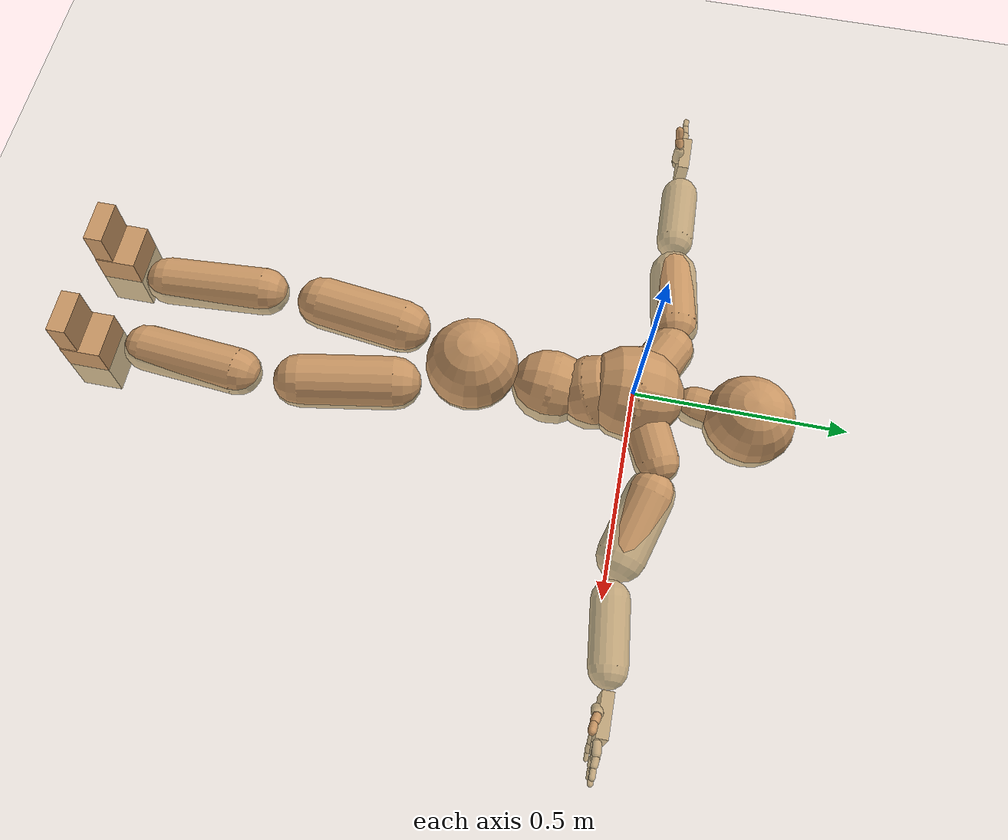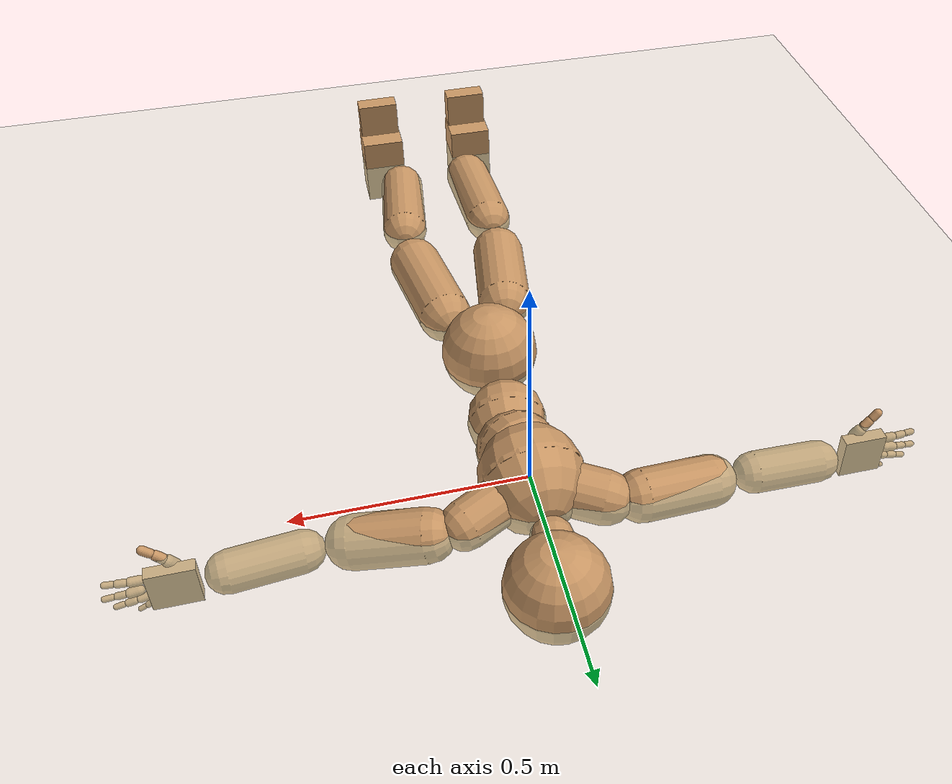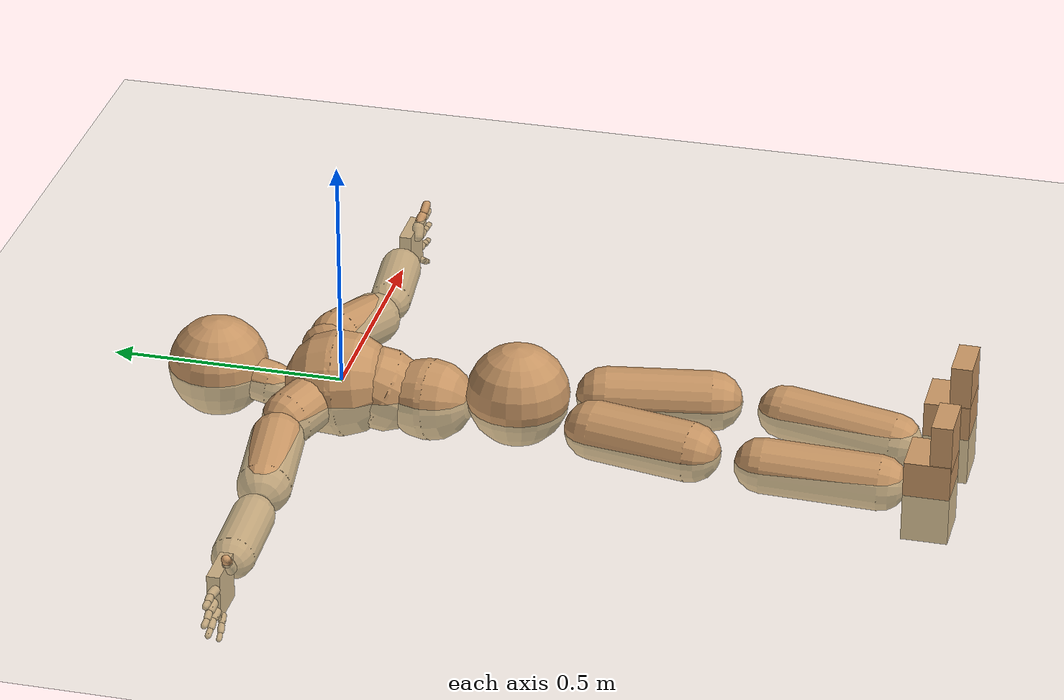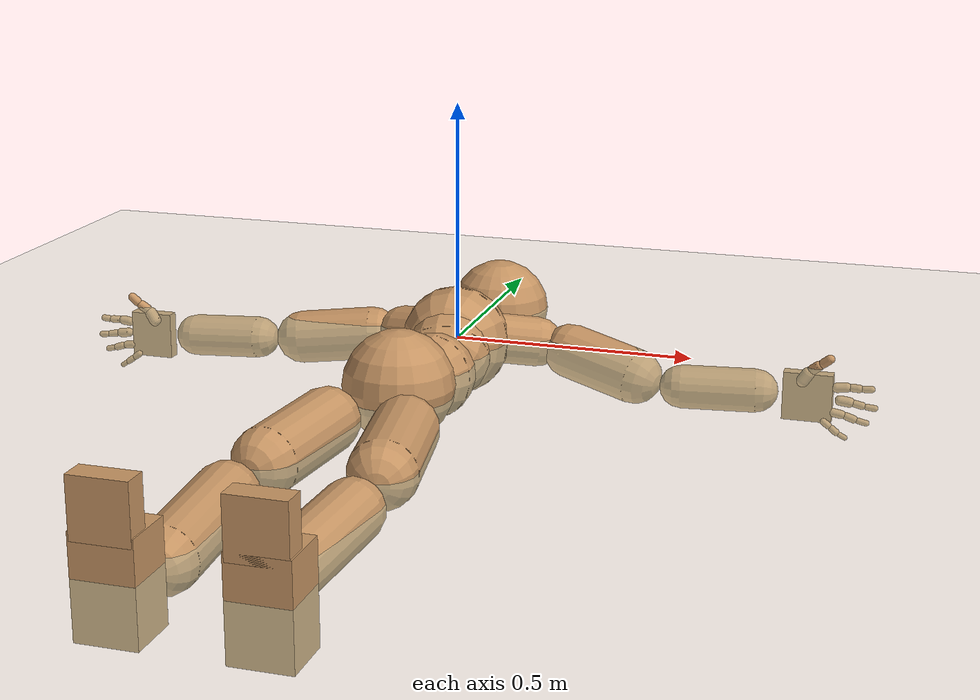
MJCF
<mujoco model="humanoid">
  <compiler coordinate="local"/>
  <default>
    <joint damping="0.0" armature="0.01" stiffness="0.0" limited="true"/>
    <geom conaffinity="1" condim="3" contype="7" margin="0.001" rgba="0.8 0.6 .4 1"/>
  </default>
  <asset>
    <texture type="skybox" builtin="gradient" rgb1=".4 .5 .6" rgb2="0 0 0" width="100" height="100"/>
    <texture builtin="flat" height="1278" mark="cross" markrgb="1 1 1" name="texgeom" random="0.01" rgb1="0.8 0.6 0.4" rgb2="0.8 0.6 0.4" type="cube" width="127"/>
    <texture builtin="checker" height="100" name="texplane" rgb1="0 0 0" rgb2="0.8 0.8 0.8" type="2d" width="100"/>
    <material name="MatPlane" reflectance="0.5" shininess="1" specular="1" texrepeat="60 60" texture="texplane"/>
    <material name="geom" texture="texgeom" texuniform="true"/>
  </asset>
  <worldbody>
    <light cutoff="100" diffuse="1 1 1" dir="-0 0 -1.3" directional="true" exponent="1" pos="0 0 1.3" specular=".1 .1 .1"/>
    <geom conaffinity="1" condim="3" name="floor" pos="0 0 0" rgba="0.8 0.9 0.8 1" size="100 100 .2" type="plane" material="MatPlane"/>
    <body name="Pelvis" pos="0.0032 -0.3848 0.0162">
      <freejoint name="Pelvis"/>
      <geom type="sphere" contype="1" conaffinity="1" density="4629.6296296296305" size="0.1100" pos="0.0000 0.0000 0.0000" name="Pelvis"/>
      <body name="L_Hip" pos="0.0616 -0.0988 -0.0225">
        <joint name="L_Hip_x" type="hinge" pos="0 0 0" axis="1 0 0" user="250 2.5 1 500 10 2" armature="0.01" range="-90.0000 90.0000" damping="0" stiffness="0"/>
        <joint name="L_Hip_y" type="hinge" pos="0 0 0" axis="0 1 0" user="250 2.5 1 500 10 2" armature="0.01" range="-90.0000 90.0000" damping="0" stiffness="0"/>
        <joint name="L_Hip_z" type="hinge" pos="0 0 0" axis="0 0 1" user="250 2.5 1 500 10 2" armature="0.01" range="-90.0000 90.0000" damping="0" stiffness="0"/>
        <geom type="capsule" contype="1" conaffinity="1" density="2040.816327" fromto="0.0121 -0.0738 -0.0003 0.0484 -0.2953 -0.0013" size="0.0641" name="L_Hip"/>
        <body name="L_Knee" pos="0.0605 -0.3691 -0.0017">
          <joint name="L_Knee_x" type="hinge" pos="0 0 0" axis="1 0 0" user="250 2.5 1 500 10 2" armature="0.01" range="-180.0000 180.0000" damping="0" stiffness="0"/>
          <joint name="L_Knee_y" type="hinge" pos="0 0 0" axis="0 1 0" user="250 2.5 1 500 10 2" armature="0.01" range="-5.6250 5.6250" damping="0" stiffness="0"/>
          <joint name="L_Knee_z" type="hinge" pos="0 0 0" axis="0 0 1" user="250 2.5 1 500 10 2" armature="0.01" range="-5.6250 5.6250" damping="0" stiffness="0"/>
          <geom type="capsule" contype="1" conaffinity="1" density="1234.567901" fromto="-0.0093 -0.0799 -0.0064 -0.0371 -0.3195 -0.0255" size="0.0569" name="L_Knee"/>
          <body name="L_Ankle" pos="-0.0464 -0.3994 -0.0319">
            <joint name="L_Ankle_x" type="hinge" pos="0 0 0" axis="1 0 0" user="150 2.5 1 500 10 2" armature="0.01" range="-90.0000 90.0000" damping="0" stiffness="0"/>
            <joint name="L_Ankle_y" type="hinge" pos="0 0 0" axis="0 1 0" user="150 2.5 1 500 10 2" armature="0.01" range="-90.0000 90.0000" damping="0" stiffness="0"/>
            <joint name="L_Ankle_z" type="hinge" pos="0 0 0" axis="0 0 1" user="150 2.5 1 500 10 2" armature="0.01" range="-90.0000 90.0000" damping="0" stiffness="0"/>
            <geom type="box" density="457.484545" pos="0.0450 -0.0281 0.0235" size="0.0541 0.0483 0.0898" quat="1.0000 0.0000 0.0000 0.0000" name="L_Ankle"/>
            <body name="L_Toe" pos="0.0523 -0.0573 0.1232">
              <joint name="L_Toe_x" type="hinge" pos="0 0 0" axis="1 0 0" user="150 1 1 500 1 1" armature="0.01" range="-90.0000 90.0000" damping="0" stiffness="0"/>
              <joint name="L_Toe_y" type="hinge" pos="0 0 0" axis="0 1 0" user="150 1 1 500 1 1" armature="0.01" range="-45.0000 45.0000" damping="0" stiffness="0"/>
              <joint name="L_Toe_z" type="hinge" pos="0 0 0" axis="0 0 1" user="150 1 1 500 1 1" armature="0.01" range="-45.0000 45.0000" damping="0" stiffness="0"/>
              <geom type="box" density="422.608098" pos="-0.0073 0.0030 0.0268" size="0.0516 0.0221 0.0526" quat="1.0000 0.0000 0.0000 0.0000" name="L_Toe"/>
            </body>
          </body>
        </body>
      </body>
      <body name="R_Hip" pos="-0.0664 -0.1118 -0.0156">
        <joint name="R_Hip_x" type="hinge" pos="0 0 0" axis="1 0 0" user="250 2.5 1 500 10 2" armature="0.01" range="-90.0000 90.0000" damping="0" stiffness="0"/>
        <joint name="R_Hip_y" type="hinge" pos="0 0 0" axis="0 1 0" user="250 2.5 1 500 10 2" armature="0.01" range="-90.0000 90.0000" damping="0" stiffness="0"/>
        <joint name="R_Hip_z" type="hinge" pos="0 0 0" axis="0 0 1" user="250 2.5 1 500 10 2" armature="0.01" range="-90.0000 90.0000" damping="0" stiffness="0"/>
        <geom type="capsule" contype="1" conaffinity="1" density="2040.816327" fromto="-0.0099 -0.0702 -0.0023 -0.0397 -0.2808 -0.0091" size="0.0636" name="R_Hip"/>
        <body name="R_Knee" pos="-0.0496 -0.351 -0.0113">
          <joint name="R_Knee_x" type="hinge" pos="0 0 0" axis="1 0 0" user="250 2.5 1 500 10 2" armature="0.01" range="-180.0000 180.0000" damping="0" stiffness="0"/>
          <joint name="R_Knee_y" type="hinge" pos="0 0 0" axis="0 1 0" user="250 2.5 1 500 10 2" armature="0.01" range="-5.6250 5.6250" damping="0" stiffness="0"/>
          <joint name="R_Knee_z" type="hinge" pos="0 0 0" axis="0 0 1" user="250 2.5 1 500 10 2" armature="0.01" range="-5.6250 5.6250" damping="0" stiffness="0"/>
          <geom type="capsule" contype="1" conaffinity="1" density="1234.567901" fromto="0.0030 -0.0814 -0.0039 0.0122 -0.3254 -0.0155" size="0.0586" name="R_Knee"/>
          <body name="R_Ankle" pos="0.0152 -0.4068 -0.0194">
            <joint name="R_Ankle_x" type="hinge" pos="0 0 0" axis="1 0 0" user="150 1 1 500 10 2" armature="0.01" range="-90.0000 90.0000" damping="0" stiffness="0"/>
            <joint name="R_Ankle_y" type="hinge" pos="0 0 0" axis="0 1 0" user="150 1 1 500 10 2" armature="0.01" range="-90.0000 90.0000" damping="0" stiffness="0"/>
            <joint name="R_Ankle_z" type="hinge" pos="0 0 0" axis="0 0 1" user="150 1 1 500 10 2" armature="0.01" range="-90.0000 90.0000" damping="0" stiffness="0"/>
            <geom type="box" density="457.483431" pos="-0.0263 -0.0258 0.0138" size="0.0541 0.0483 0.0898" quat="1.0000 0.0000 0.0000 0.0000" name="R_Ankle"/>
            <body name="R_Toe" pos="-0.0423 -0.0576 0.1241">
              <joint name="R_Toe_x" type="hinge" pos="0 0 0" axis="1 0 0" user="150 1 1 500 1 1" armature="0.01" range="-90.0000 90.0000" damping="0" stiffness="0"/>
              <joint name="R_Toe_y" type="hinge" pos="0 0 0" axis="0 1 0" user="150 1 1 500 1 1" armature="0.01" range="-45.0000 45.0000" damping="0" stiffness="0"/>
              <joint name="R_Toe_z" type="hinge" pos="0 0 0" axis="0 0 1" user="150 1 1 500 1 1" armature="0.01" range="-45.0000 45.0000" damping="0" stiffness="0"/>
              <geom type="box" density="422.607672" pos="0.0160 0.0055 0.0162" size="0.0516 0.0221 0.0526" quat="1.0000 0.0000 0.0000 0.0000" name="R_Toe"/>
            </body>
          </body>
        </body>
      </body>
      <body name="Torso" pos="-0.0035 0.1186 -0.0356">
        <joint name="Torso_x" type="hinge" pos="0 0 0" axis="1 0 0" user="500 5 1 500 10 2" armature="0.01" range="-60.0000 60.0000" damping="0" stiffness="0"/>
        <joint name="Torso_y" type="hinge" pos="0 0 0" axis="0 1 0" user="500 5 1 500 10 2" armature="0.01" range="-60.0000 60.0000" damping="0" stiffness="0"/>
        <joint name="Torso_z" type="hinge" pos="0 0 0" axis="0 0 1" user="500 5 1 500 10 2" armature="0.01" range="-60.0000 60.0000" damping="0" stiffness="0"/>
        <geom type="capsule" contype="1" conaffinity="1" density="2040.816327" fromto="0.0058 0.0659 -0.0040 0.0071 0.0805 -0.0049" size="0.0868" name="Torso"/>
        <body name="Spine" pos="0.0129 0.1464 -0.009">
          <joint name="Spine_x" type="hinge" pos="0 0 0" axis="1 0 0" user="500 5 1 500 10 2" armature="0.01" range="-60.0000 60.0000" damping="0" stiffness="0"/>
          <joint name="Spine_y" type="hinge" pos="0 0 0" axis="0 1 0" user="500 5 1 500 10 2" armature="0.01" range="-60.0000 60.0000" damping="0" stiffness="0"/>
          <joint name="Spine_z" type="hinge" pos="0 0 0" axis="0 0 1" user="500 5 1 500 10 2" armature="0.01" range="-60.0000 60.0000" damping="0" stiffness="0"/>
          <geom type="capsule" contype="1" conaffinity="1" density="2040.816327" fromto="-0.0058 0.0270 0.0144 -0.0070 0.0330 0.0176" size="0.0887" name="Spine"/>
          <body name="Chest" pos="-0.0128 0.0599 0.032">
            <joint name="Chest_x" type="hinge" pos="0 0 0" axis="1 0 0" user="500 5 1 500 10 2" armature="0.01" range="-60.0000 60.0000" damping="0" stiffness="0"/>
            <joint name="Chest_y" type="hinge" pos="0 0 0" axis="0 1 0" user="500 5 1 500 10 2" armature="0.01" range="-60.0000 60.0000" damping="0" stiffness="0"/>
            <joint name="Chest_z" type="hinge" pos="0 0 0" axis="0 0 1" user="500 5 1 500 10 2" armature="0.01" range="-60.0000 60.0000" damping="0" stiffness="0"/>
            <geom type="capsule" contype="1" conaffinity="1" density="2040.816327" fromto="-0.0029 0.0533 -0.0075 -0.0035 0.0652 -0.0091" size="0.1137" name="Chest"/>
            <body name="Neck" pos="-0.0148 0.1754 -0.0319">
              <joint name="Neck_x" type="hinge" pos="0 0 0" axis="1 0 0" user="150 1 1 250 50 4" armature="0.01" range="-180.0000 180.0000" damping="0" stiffness="0"/>
              <joint name="Neck_y" type="hinge" pos="0 0 0" axis="0 1 0" user="150 1 1 250 50 4" armature="0.01" range="-180.0000 180.0000" damping="0" stiffness="0"/>
              <joint name="Neck_z" type="hinge" pos="0 0 0" axis="0 0 1" user="150 1 1 250 50 4" armature="0.01" range="-180.0000 180.0000" damping="0" stiffness="0"/>
              <geom type="capsule" contype="1" conaffinity="1" density="1000" fromto="0.0057 0.0317 0.0042 0.0227 0.1269 0.0167" size="0.0465" name="Neck"/>
              <body name="Head" pos="0.0283 0.1586 0.0209">
                <joint name="Head_x" type="hinge" pos="0 0 0" axis="1 0 0" user="150 1 1 250 50 4" armature="0.01" range="-90.0000 90.0000" damping="0" stiffness="0"/>
                <joint name="Head_y" type="hinge" pos="0 0 0" axis="0 1 0" user="150 1 1 250 50 4" armature="0.01" range="-90.0000 90.0000" damping="0" stiffness="0"/>
                <joint name="Head_z" type="hinge" pos="0 0 0" axis="0 0 1" user="150 1 1 250 50 4" armature="0.01" range="-90.0000 90.0000" damping="0" stiffness="0"/>
                <geom type="sphere" contype="1" conaffinity="1" density="1000" size="0.1078" pos="0.0000 0.0000 0.0000" name="Head"/>
              </body>
            </body>
            <body name="L_Thorax" pos="0.0491 0.0904 -0.0056">
              <joint name="L_Thorax_x" type="hinge" pos="0 0 0" axis="1 0 0" user="200 2 1 500 50 4" armature="0.01" range="-180.0000 180.0000" damping="0" stiffness="0"/>
              <joint name="L_Thorax_y" type="hinge" pos="0 0 0" axis="0 1 0" user="200 2 1 500 50 4" armature="0.01" range="-180.0000 180.0000" damping="0" stiffness="0"/>
              <joint name="L_Thorax_z" type="hinge" pos="0 0 0" axis="0 0 1" user="200 2 1 500 50 4" armature="0.01" range="-180.0000 180.0000" damping="0" stiffness="0"/>
              <geom type="capsule" contype="1" conaffinity="1" density="1000" fromto="0.0260 0.0118 -0.0038 0.1041 0.0471 -0.0152" size="0.0534" name="L_Thorax"/>
              <body name="L_Shoulder" pos="0.1301 0.0588 -0.019">
                <joint name="L_Shoulder_x" type="hinge" pos="0 0 0" axis="1 0 0" user="200 2 1 500 50 4" armature="0.01" range="-180.0000 180.0000" damping="0" stiffness="0"/>
                <joint name="L_Shoulder_y" type="hinge" pos="0 0 0" axis="0 1 0" user="200 2 1 500 50 4" armature="0.01" range="-180.0000 180.0000" damping="0" stiffness="0"/>
                <joint name="L_Shoulder_z" type="hinge" pos="0 0 0" axis="0 0 1" user="200 2 1 500 50 4" armature="0.01" range="-180.0000 180.0000" damping="0" stiffness="0"/>
                <geom type="capsule" contype="1" conaffinity="1" density="1000" fromto="0.0497 -0.0142 -0.0097 0.1987 -0.0568 -0.0387" size="0.0577" name="L_Shoulder"/>
                <body name="L_Elbow" pos="0.2483 -0.071 -0.0484">
                  <joint name="L_Elbow_x" type="hinge" pos="0 0 0" axis="1 0 0" user="150 1 1 150 10 2" armature="0.01" range="-720.0000 720.0000" damping="0" stiffness="0"/>
                  <joint name="L_Elbow_y" type="hinge" pos="0 0 0" axis="0 1 0" user="150 1 1 150 10 2" armature="0.01" range="-720.0000 720.0000" damping="0" stiffness="0"/>
                  <joint name="L_Elbow_z" type="hinge" pos="0 0 0" axis="0 0 1" user="150 1 1 150 10 2" armature="0.01" range="-720.0000 720.0000" damping="0" stiffness="0"/>
                  <geom type="capsule" contype="1" conaffinity="1" density="1000" fromto="0.0506 0.0053 0.0004 0.2025 0.0212 0.0015" size="0.0452" name="L_Elbow"/>
                  <body name="L_Wrist" pos="0.2531 0.0266 0.0019">
                    <joint name="L_Wrist_x" type="hinge" pos="0 0 0" axis="1 0 0" user="100 1 1 150 1 1" armature="0.01" range="-180.0000 180.0000" damping="0" stiffness="0"/>
                    <joint name="L_Wrist_y" type="hinge" pos="0 0 0" axis="0 1 0" user="100 1 1 150 1 1" armature="0.01" range="-180.0000 180.0000" damping="0" stiffness="0"/>
                    <joint name="L_Wrist_z" type="hinge" pos="0 0 0" axis="0 0 1" user="100 1 1 150 1 1" armature="0.01" range="-180.0000 180.0000" damping="0" stiffness="0"/>
                    <geom type="box" density="1223.656472" pos="0.0542 -0.0010 -0.0025" size="0.0501 0.0137 0.0502" quat="1.0000 0.0000 0.0000 0.0000" name="L_Wrist"/>
                    <body name="L_Index1" pos="0.1052 -0.0078 0.0218">
                      <joint name="L_Index1_x" type="hinge" pos="0 0 0" axis="1 0 0" user="100 10 1 150" armature="0.01" range="-180.0000 180.0000" damping="0" stiffness="0"/>
                      <joint name="L_Index1_y" type="hinge" pos="0 0 0" axis="0 1 0" user="100 10 1 150" armature="0.01" range="-180.0000 180.0000" damping="0" stiffness="0"/>
                      <joint name="L_Index1_z" type="hinge" pos="0 0 0" axis="0 0 1" user="100 10 1 150" armature="0.01" range="-180.0000 180.0000" damping="0" stiffness="0"/>
                      <geom type="capsule" contype="1" conaffinity="1" density="1000" fromto="0.0066 0.0005 0.0006 0.0264 0.0021 0.0024" size="0.01" name="L_Index1"/>
                      <body name="L_Index2" pos="0.033 0.0026 0.003">
                        <joint name="L_Index2_x" type="hinge" pos="0 0 0" axis="1 0 0" user="100 10 1 150" armature="0.01" range="-180.0000 180.0000" damping="0" stiffness="0"/>
                        <joint name="L_Index2_y" type="hinge" pos="0 0 0" axis="0 1 0" user="100 10 1 150" armature="0.01" range="-180.0000 180.0000" damping="0" stiffness="0"/>
                        <joint name="L_Index2_z" type="hinge" pos="0 0 0" axis="0 0 1" user="100 10 1 150" armature="0.01" range="-180.0000 180.0000" damping="0" stiffness="0"/>
                        <geom type="capsule" contype="1" conaffinity="1" density="1000" fromto="0.0046 -0.0005 -0.0001 0.0185 -0.0020 -0.0002" size="0.0082" name="L_Index2"/>
                        <body name="L_Index3" pos="0.0231 -0.0025 -0.0003">
                          <joint name="L_Index3_x" type="hinge" pos="0 0 0" axis="1 0 0" user="100 10 1 150" armature="0.01" range="-180.0000 180.0000" damping="0" stiffness="0"/>
                          <joint name="L_Index3_y" type="hinge" pos="0 0 0" axis="0 1 0" user="100 10 1 150" armature="0.01" range="-180.0000 180.0000" damping="0" stiffness="0"/>
                          <joint name="L_Index3_z" type="hinge" pos="0 0 0" axis="0 0 1" user="100 10 1 150" armature="0.01" range="-180.0000 180.0000" damping="0" stiffness="0"/>
                          <geom type="capsule" contype="1" conaffinity="1" density="1000" fromto="0.0050 -0.0001 0.0003 0.0201 -0.0004 0.0014" size="0.0069" name="L_Index3"/>
                        </body>
                      </body>
                    </body>
                    <body name="L_Middle1" pos="0.1132 -0.0052 -0.0038">
                      <joint name="L_Middle1_x" type="hinge" pos="0 0 0" axis="1 0 0" user="100 10 1 150" armature="0.01" range="-180.0000 180.0000" damping="0" stiffness="0"/>
                      <joint name="L_Middle1_y" type="hinge" pos="0 0 0" axis="0 1 0" user="100 10 1 150" armature="0.01" range="-180.0000 180.0000" damping="0" stiffness="0"/>
                      <joint name="L_Middle1_z" type="hinge" pos="0 0 0" axis="0 0 1" user="100 10 1 150" armature="0.01" range="-180.0000 180.0000" damping="0" stiffness="0"/>
                      <geom type="capsule" contype="1" conaffinity="1" density="1000" fromto="0.0063 0.0002 -0.0008 0.0254 0.0008 -0.0033" size="0.0103" name="L_Middle1"/>
                      <body name="L_Middle2" pos="0.0317 0.001 -0.0041">
                        <joint name="L_Middle2_x" type="hinge" pos="0 0 0" axis="1 0 0" user="100 10 1 150" armature="0.01" range="-180.0000 180.0000" damping="0" stiffness="0"/>
                        <joint name="L_Middle2_y" type="hinge" pos="0 0 0" axis="0 1 0" user="100 10 1 150" armature="0.01" range="-180.0000 180.0000" damping="0" stiffness="0"/>
                        <joint name="L_Middle2_z" type="hinge" pos="0 0 0" axis="0 0 1" user="100 10 1 150" armature="0.01" range="-180.0000 180.0000" damping="0" stiffness="0"/>
                        <geom type="capsule" contype="1" conaffinity="1" density="1000" fromto="0.0048 -0.0005 -0.0009 0.0193 -0.0018 -0.0035" size="0.0076" name="L_Middle2"/>
                        <body name="L_Middle3" pos="0.0241 -0.0023 -0.0044">
                          <joint name="L_Middle3_x" type="hinge" pos="0 0 0" axis="1 0 0" user="100 10 1 150" armature="0.01" range="-180.0000 180.0000" damping="0" stiffness="0"/>
                          <joint name="L_Middle3_y" type="hinge" pos="0 0 0" axis="0 1 0" user="100 10 1 150" armature="0.01" range="-180.0000 180.0000" damping="0" stiffness="0"/>
                          <joint name="L_Middle3_z" type="hinge" pos="0 0 0" axis="0 0 1" user="100 10 1 150" armature="0.01" range="-180.0000 180.0000" damping="0" stiffness="0"/>
                          <geom type="capsule" contype="1" conaffinity="1" density="1000" fromto="0.0052 -0.0001 -0.0005 0.0209 -0.0002 -0.0019" size="0.0065" name="L_Middle3"/>
                        </body>
                      </body>
                    </body>
                    <body name="L_Pinky1" pos="0.0867 -0.0144 -0.0473">
                      <joint name="L_Pinky1_x" type="hinge" pos="0 0 0" axis="1 0 0" user="100 10 1 150" armature="0.01" range="-180.0000 180.0000" damping="0" stiffness="0"/>
                      <joint name="L_Pinky1_y" type="hinge" pos="0 0 0" axis="0 1 0" user="100 10 1 150" armature="0.01" range="-180.0000 180.0000" damping="0" stiffness="0"/>
                      <joint name="L_Pinky1_z" type="hinge" pos="0 0 0" axis="0 0 1" user="100 10 1 150" armature="0.01" range="-180.0000 180.0000" damping="0" stiffness="0"/>
                      <geom type="capsule" contype="1" conaffinity="1" density="1000" fromto="0.0033 -0.0003 -0.0025 0.0134 -0.0011 -0.0101" size="0.0073" name="L_Pinky1"/>
                      <body name="L_Pinky2" pos="0.0167 -0.0014 -0.0127">
                        <joint name="L_Pinky2_x" type="hinge" pos="0 0 0" axis="1 0 0" user="100 10 1 150" armature="0.01" range="-180.0000 180.0000" damping="0" stiffness="0"/>
                        <joint name="L_Pinky2_y" type="hinge" pos="0 0 0" axis="0 1 0" user="100 10 1 150" armature="0.01" range="-180.0000 180.0000" damping="0" stiffness="0"/>
                        <joint name="L_Pinky2_z" type="hinge" pos="0 0 0" axis="0 0 1" user="100 10 1 150" armature="0.01" range="-180.0000 180.0000" damping="0" stiffness="0"/>
                        <geom type="capsule" contype="1" conaffinity="1" density="1000" fromto="0.0033 -0.0004 -0.0023 0.0131 -0.0016 -0.0092" size="0.007" name="L_Pinky2"/>
                        <body name="L_Pinky3" pos="0.0164 -0.002 -0.0115">
                          <joint name="L_Pinky3_x" type="hinge" pos="0 0 0" axis="1 0 0" user="100 10 1 150" armature="0.01" range="-180.0000 180.0000" damping="0" stiffness="0"/>
                          <joint name="L_Pinky3_y" type="hinge" pos="0 0 0" axis="0 1 0" user="100 10 1 150" armature="0.01" range="-180.0000 180.0000" damping="0" stiffness="0"/>
                          <joint name="L_Pinky3_z" type="hinge" pos="0 0 0" axis="0 0 1" user="100 10 1 150" armature="0.01" range="-180.0000 180.0000" damping="0" stiffness="0"/>
                          <geom type="capsule" contype="1" conaffinity="1" density="1000" fromto="0.0037 -0.0000 -0.0019 0.0147 -0.0000 -0.0076" size="0.0053" name="L_Pinky3"/>
                        </body>
                      </body>
                    </body>
                    <body name="L_Ring1" pos="0.1008 -0.0085 -0.0294">
                      <joint name="L_Ring1_x" type="hinge" pos="0 0 0" axis="1 0 0" user="100 10 1 150" armature="0.01" range="-180.0000 180.0000" damping="0" stiffness="0"/>
                      <joint name="L_Ring1_y" type="hinge" pos="0 0 0" axis="0 1 0" user="100 10 1 150" armature="0.01" range="-180.0000 180.0000" damping="0" stiffness="0"/>
                      <joint name="L_Ring1_z" type="hinge" pos="0 0 0" axis="0 0 1" user="100 10 1 150" armature="0.01" range="-180.0000 180.0000" damping="0" stiffness="0"/>
                      <geom type="capsule" contype="1" conaffinity="1" density="1000" fromto="0.0059 0.0003 -0.0011 0.0236 0.0013 -0.0044" size="0.0088" name="L_Ring1"/>
                      <body name="L_Ring2" pos="0.0295 0.0016 -0.0055">
                        <joint name="L_Ring2_x" type="hinge" pos="0 0 0" axis="1 0 0" user="100 10 1 150" armature="0.01" range="-180.0000 180.0000" damping="0" stiffness="0"/>
                        <joint name="L_Ring2_y" type="hinge" pos="0 0 0" axis="0 1 0" user="100 10 1 150" armature="0.01" range="-180.0000 180.0000" damping="0" stiffness="0"/>
                        <joint name="L_Ring2_z" type="hinge" pos="0 0 0" axis="0 0 1" user="100 10 1 150" armature="0.01" range="-180.0000 180.0000" damping="0" stiffness="0"/>
                        <geom type="capsule" contype="1" conaffinity="1" density="1000" fromto="0.0047 -0.0004 -0.0015 0.0190 -0.0014 -0.0059" size="0.008" name="L_Ring2"/>
                        <body name="L_Ring3" pos="0.0237 -0.0018 -0.0074">
                          <joint name="L_Ring3_x" type="hinge" pos="0 0 0" axis="1 0 0" user="100 10 1 150" armature="0.01" range="-180.0000 180.0000" damping="0" stiffness="0"/>
                          <joint name="L_Ring3_y" type="hinge" pos="0 0 0" axis="0 1 0" user="100 10 1 150" armature="0.01" range="-180.0000 180.0000" damping="0" stiffness="0"/>
                          <joint name="L_Ring3_z" type="hinge" pos="0 0 0" axis="0 0 1" user="100 10 1 150" armature="0.01" range="-180.0000 180.0000" damping="0" stiffness="0"/>
                          <geom type="capsule" contype="1" conaffinity="1" density="1000" fromto="0.0051 0.0000 -0.0011 0.0206 0.0002 -0.0043" size="0.0062" name="L_Ring3"/>
                        </body>
                      </body>
                    </body>
                    <body name="L_Thumb1" pos="0.0409 -0.0195 0.0291">
                      <joint name="L_Thumb1_x" type="hinge" pos="0 0 0" axis="1 0 0" user="100 10 1 150" armature="0.01" range="-180.0000 180.0000" damping="0" stiffness="0"/>
                      <joint name="L_Thumb1_y" type="hinge" pos="0 0 0" axis="0 1 0" user="100 10 1 150" armature="0.01" range="-180.0000 180.0000" damping="0" stiffness="0"/>
                      <joint name="L_Thumb1_z" type="hinge" pos="0 0 0" axis="0 0 1" user="100 10 1 150" armature="0.01" range="-180.0000 180.0000" damping="0" stiffness="0"/>
                      <geom type="capsule" contype="1" conaffinity="1" density="1000" fromto="0.0035 0.0003 0.0054 0.0138 0.0013 0.0215" size="0.0131" name="L_Thumb1"/>
                      <body name="L_Thumb2" pos="0.0173 0.0016 0.0269">
                        <joint name="L_Thumb2_x" type="hinge" pos="0 0 0" axis="1 0 0" user="100 10 1 150" armature="0.01" range="-180.0000 180.0000" damping="0" stiffness="0"/>
                        <joint name="L_Thumb2_y" type="hinge" pos="0 0 0" axis="0 1 0" user="100 10 1 150" armature="0.01" range="-180.0000 180.0000" damping="0" stiffness="0"/>
                        <joint name="L_Thumb2_z" type="hinge" pos="0 0 0" axis="0 0 1" user="100 10 1 150" armature="0.01" range="-180.0000 180.0000" damping="0" stiffness="0"/>
                        <geom type="capsule" contype="1" conaffinity="1" density="1000" fromto="0.0042 -0.0011 0.0032 0.0168 -0.0045 0.0130" size="0.0105" name="L_Thumb2"/>
                        <body name="L_Thumb3" pos="0.021 -0.0056 0.0162">
                          <joint name="L_Thumb3_x" type="hinge" pos="0 0 0" axis="1 0 0" user="100 10 1 150" armature="0.01" range="-180.0000 180.0000" damping="0" stiffness="0"/>
                          <joint name="L_Thumb3_y" type="hinge" pos="0 0 0" axis="0 1 0" user="100 10 1 150" armature="0.01" range="-180.0000 180.0000" damping="0" stiffness="0"/>
                          <joint name="L_Thumb3_z" type="hinge" pos="0 0 0" axis="0 0 1" user="100 10 1 150" armature="0.01" range="-180.0000 180.0000" damping="0" stiffness="0"/>
                          <geom type="capsule" contype="1" conaffinity="1" density="1000" fromto="0.0046 -0.0007 0.0036 0.0184 -0.0029 0.0146" size="0.0094" name="L_Thumb3"/>
                        </body>
                      </body>
                    </body>
                  </body>
                </body>
              </body>
            </body>
            <body name="R_Thorax" pos="-0.0534 0.0897 -0.0122">
              <joint name="R_Thorax_x" type="hinge" pos="0 0 0" axis="1 0 0" user="200 2 1 150 10 2" armature="0.01" range="-180.0000 180.0000" damping="0" stiffness="0"/>
              <joint name="R_Thorax_y" type="hinge" pos="0 0 0" axis="0 1 0" user="200 2 1 150 10 2" armature="0.01" range="-180.0000 180.0000" damping="0" stiffness="0"/>
              <joint name="R_Thorax_z" type="hinge" pos="0 0 0" axis="0 0 1" user="200 2 1 150 10 2" armature="0.01" range="-180.0000 180.0000" damping="0" stiffness="0"/>
              <geom type="capsule" contype="1" conaffinity="1" density="1000" fromto="-0.0224 0.0108 -0.0034 -0.0896 0.0430 -0.0137" size="0.0587" name="R_Thorax"/>
              <body name="R_Shoulder" pos="-0.112 0.0538 -0.0171">
                <joint name="R_Shoulder_x" type="hinge" pos="0 0 0" axis="1 0 0" user="200 2 1 250 10 2" armature="0.01" range="-180.0000 180.0000" damping="0" stiffness="0"/>
                <joint name="R_Shoulder_y" type="hinge" pos="0 0 0" axis="0 1 0" user="200 2 1 250 10 2" armature="0.01" range="-180.0000 180.0000" damping="0" stiffness="0"/>
                <joint name="R_Shoulder_z" type="hinge" pos="0 0 0" axis="0 0 1" user="200 2 1 250 10 2" armature="0.01" range="-180.0000 180.0000" damping="0" stiffness="0"/>
                <geom type="capsule" contype="1" conaffinity="1" density="1000" fromto="-0.0533 -0.0061 -0.0060 -0.2130 -0.0246 -0.0240" size="0.0575" name="R_Shoulder"/>
                <body name="R_Elbow" pos="-0.2663 -0.0307 -0.03">
                  <joint name="R_Elbow_x" type="hinge" pos="0 0 0" axis="1 0 0" user="150 1 1 150 10 2" armature="0.01" range="-720.0000 720.0000" damping="0" stiffness="0"/>
                  <joint name="R_Elbow_y" type="hinge" pos="0 0 0" axis="0 1 0" user="150 1 1 150 10 2" armature="0.01" range="-720.0000 720.0000" damping="0" stiffness="0"/>
                  <joint name="R_Elbow_z" type="hinge" pos="0 0 0" axis="0 0 1" user="150 1 1 150 10 2" armature="0.01" range="-720.0000 720.0000" damping="0" stiffness="0"/>
                  <geom type="capsule" contype="1" conaffinity="1" density="1000" fromto="-0.0501 -0.0010 -0.0023 -0.2003 -0.0039 -0.0092" size="0.0455" name="R_Elbow"/>
                  <body name="R_Wrist" pos="-0.2504 -0.0048 -0.0115">
                    <joint name="R_Wrist_x" type="hinge" pos="0 0 0" axis="1 0 0" user="100 1 1 150 1 1" armature="0.01" range="-180.0000 180.0000" damping="0" stiffness="0"/>
                    <joint name="R_Wrist_y" type="hinge" pos="0 0 0" axis="0 1 0" user="100 1 1 150 1 1" armature="0.01" range="-180.0000 180.0000" damping="0" stiffness="0"/>
                    <joint name="R_Wrist_z" type="hinge" pos="0 0 0" axis="0 0 1" user="100 1 1 150 1 1" armature="0.01" range="-180.0000 180.0000" damping="0" stiffness="0"/>
                    <geom type="box" density="1251.962666" pos="-0.0556 -0.0042 -0.0029" size="0.0473 0.0137 0.0502" quat="1.0000 0.0000 0.0000 0.0000" name="R_Wrist"/>
                    <body name="R_Index1" pos="-0.1033 -0.011 0.0214">
                      <joint name="R_Index1_x" type="hinge" pos="0 0 0" axis="1 0 0" user="100 10 1 150" armature="0.01" range="-180.0000 180.0000" damping="0" stiffness="0"/>
                      <joint name="R_Index1_y" type="hinge" pos="0 0 0" axis="0 1 0" user="100 10 1 150" armature="0.01" range="-180.0000 180.0000" damping="0" stiffness="0"/>
                      <joint name="R_Index1_z" type="hinge" pos="0 0 0" axis="0 0 1" user="100 10 1 150" armature="0.01" range="-180.0000 180.0000" damping="0" stiffness="0"/>
                      <geom type="capsule" contype="1" conaffinity="1" density="1000" fromto="-0.0066 0.0005 0.0006 -0.0264 0.0021 0.0024" size="0.01" name="R_Index1"/>
                      <body name="R_Index2" pos="-0.033 0.0026 0.003">
                        <joint name="R_Index2_x" type="hinge" pos="0 0 0" axis="1 0 0" user="100 10 1 150" armature="0.01" range="-180.0000 180.0000" damping="0" stiffness="0"/>
                        <joint name="R_Index2_y" type="hinge" pos="0 0 0" axis="0 1 0" user="100 10 1 150" armature="0.01" range="-180.0000 180.0000" damping="0" stiffness="0"/>
                        <joint name="R_Index2_z" type="hinge" pos="0 0 0" axis="0 0 1" user="100 10 1 150" armature="0.01" range="-180.0000 180.0000" damping="0" stiffness="0"/>
                        <geom type="capsule" contype="1" conaffinity="1" density="1000" fromto="-0.0046 -0.0005 -0.0001 -0.0185 -0.0020 -0.0002" size="0.0082" name="R_Index2"/>
                        <body name="R_Index3" pos="-0.0231 -0.0025 -0.0003">
                          <joint name="R_Index3_x" type="hinge" pos="0 0 0" axis="1 0 0" user="100 10 1 150" armature="0.01" range="-180.0000 180.0000" damping="0" stiffness="0"/>
                          <joint name="R_Index3_y" type="hinge" pos="0 0 0" axis="0 1 0" user="100 10 1 150" armature="0.01" range="-180.0000 180.0000" damping="0" stiffness="0"/>
                          <joint name="R_Index3_z" type="hinge" pos="0 0 0" axis="0 0 1" user="100 10 1 150" armature="0.01" range="-180.0000 180.0000" damping="0" stiffness="0"/>
                          <geom type="capsule" contype="1" conaffinity="1" density="1000" fromto="-0.0042 -0.0001 0.0003 -0.0169 -0.0004 0.0014" size="0.0072" name="R_Index3"/>
                        </body>
                      </body>
                    </body>
                    <body name="R_Middle1" pos="-0.1113 -0.0084 -0.0041">
                      <joint name="R_Middle1_x" type="hinge" pos="0 0 0" axis="1 0 0" user="100 10 1 150" armature="0.01" range="-180.0000 180.0000" damping="0" stiffness="0"/>
                      <joint name="R_Middle1_y" type="hinge" pos="0 0 0" axis="0 1 0" user="100 10 1 150" armature="0.01" range="-180.0000 180.0000" damping="0" stiffness="0"/>
                      <joint name="R_Middle1_z" type="hinge" pos="0 0 0" axis="0 0 1" user="100 10 1 150" armature="0.01" range="-180.0000 180.0000" damping="0" stiffness="0"/>
                      <geom type="capsule" contype="1" conaffinity="1" density="1000" fromto="-0.0063 0.0002 -0.0008 -0.0254 0.0008 -0.0033" size="0.0103" name="R_Middle1"/>
                      <body name="R_Middle2" pos="-0.0317 0.001 -0.0041">
                        <joint name="R_Middle2_x" type="hinge" pos="0 0 0" axis="1 0 0" user="100 10 1 150" armature="0.01" range="-180.0000 180.0000" damping="0" stiffness="0"/>
                        <joint name="R_Middle2_y" type="hinge" pos="0 0 0" axis="0 1 0" user="100 10 1 150" armature="0.01" range="-180.0000 180.0000" damping="0" stiffness="0"/>
                        <joint name="R_Middle2_z" type="hinge" pos="0 0 0" axis="0 0 1" user="100 10 1 150" armature="0.01" range="-180.0000 180.0000" damping="0" stiffness="0"/>
                        <geom type="capsule" contype="1" conaffinity="1" density="1000" fromto="-0.0048 -0.0005 -0.0009 -0.0193 -0.0018 -0.0035" size="0.0076" name="R_Middle2"/>
                        <body name="R_Middle3" pos="-0.0241 -0.0023 -0.0044">
                          <joint name="R_Middle3_x" type="hinge" pos="0 0 0" axis="1 0 0" user="100 10 1 150" armature="0.01" range="-180.0000 180.0000" damping="0" stiffness="0"/>
                          <joint name="R_Middle3_y" type="hinge" pos="0 0 0" axis="0 1 0" user="100 10 1 150" armature="0.01" range="-180.0000 180.0000" damping="0" stiffness="0"/>
                          <joint name="R_Middle3_z" type="hinge" pos="0 0 0" axis="0 0 1" user="100 10 1 150" armature="0.01" range="-180.0000 180.0000" damping="0" stiffness="0"/>
                          <geom type="capsule" contype="1" conaffinity="1" density="1000" fromto="-0.0044 -0.0001 -0.0005 -0.0177 -0.0002 -0.0019" size="0.0068" name="R_Middle3"/>
                        </body>
                      </body>
                    </body>
                    <body name="R_Pinky1" pos="-0.0848 -0.0176 -0.0476">
                      <joint name="R_Pinky1_x" type="hinge" pos="0 0 0" axis="1 0 0" user="100 10 1 150" armature="0.01" range="-180.0000 180.0000" damping="0" stiffness="0"/>
                      <joint name="R_Pinky1_y" type="hinge" pos="0 0 0" axis="0 1 0" user="100 10 1 150" armature="0.01" range="-180.0000 180.0000" damping="0" stiffness="0"/>
                      <joint name="R_Pinky1_z" type="hinge" pos="0 0 0" axis="0 0 1" user="100 10 1 150" armature="0.01" range="-180.0000 180.0000" damping="0" stiffness="0"/>
                      <geom type="capsule" contype="1" conaffinity="1" density="1000" fromto="-0.0033 -0.0003 -0.0025 -0.0134 -0.0011 -0.0101" size="0.0073" name="R_Pinky1"/>
                      <body name="R_Pinky2" pos="-0.0167 -0.0014 -0.0127">
                        <joint name="R_Pinky2_x" type="hinge" pos="0 0 0" axis="1 0 0" user="100 10 1 150" armature="0.01" range="-180.0000 180.0000" damping="0" stiffness="0"/>
                        <joint name="R_Pinky2_y" type="hinge" pos="0 0 0" axis="0 1 0" user="100 10 1 150" armature="0.01" range="-180.0000 180.0000" damping="0" stiffness="0"/>
                        <joint name="R_Pinky2_z" type="hinge" pos="0 0 0" axis="0 0 1" user="100 10 1 150" armature="0.01" range="-180.0000 180.0000" damping="0" stiffness="0"/>
                        <geom type="capsule" contype="1" conaffinity="1" density="1000" fromto="-0.0033 -0.0004 -0.0023 -0.0132 -0.0016 -0.0092" size="0.007" name="R_Pinky2"/>
                        <body name="R_Pinky3" pos="-0.0164 -0.002 -0.0115">
                          <joint name="R_Pinky3_x" type="hinge" pos="0 0 0" axis="1 0 0" user="100 10 1 150" armature="0.01" range="-180.0000 180.0000" damping="0" stiffness="0"/>
                          <joint name="R_Pinky3_y" type="hinge" pos="0 0 0" axis="0 1 0" user="100 10 1 150" armature="0.01" range="-180.0000 180.0000" damping="0" stiffness="0"/>
                          <joint name="R_Pinky3_z" type="hinge" pos="0 0 0" axis="0 0 1" user="100 10 1 150" armature="0.01" range="-180.0000 180.0000" damping="0" stiffness="0"/>
                          <geom type="capsule" contype="1" conaffinity="1" density="1000" fromto="-0.0029 -0.0000 -0.0019 -0.0116 -0.0000 -0.0076" size="0.0055" name="R_Pinky3"/>
                        </body>
                      </body>
                    </body>
                    <body name="R_Ring1" pos="-0.099 -0.0117 -0.0298">
                      <joint name="R_Ring1_x" type="hinge" pos="0 0 0" axis="1 0 0" user="100 10 1 150" armature="0.01" range="-180.0000 180.0000" damping="0" stiffness="0"/>
                      <joint name="R_Ring1_y" type="hinge" pos="0 0 0" axis="0 1 0" user="100 10 1 150" armature="0.01" range="-180.0000 180.0000" damping="0" stiffness="0"/>
                      <joint name="R_Ring1_z" type="hinge" pos="0 0 0" axis="0 0 1" user="100 10 1 150" armature="0.01" range="-180.0000 180.0000" damping="0" stiffness="0"/>
                      <geom type="capsule" contype="1" conaffinity="1" density="1000" fromto="-0.0059 0.0003 -0.0011 -0.0236 0.0013 -0.0044" size="0.0088" name="R_Ring1"/>
                      <body name="R_Ring2" pos="-0.0295 0.0016 -0.0055">
                        <joint name="R_Ring2_x" type="hinge" pos="0 0 0" axis="1 0 0" user="100 10 1 150" armature="0.01" range="-180.0000 180.0000" damping="0" stiffness="0"/>
                        <joint name="R_Ring2_y" type="hinge" pos="0 0 0" axis="0 1 0" user="100 10 1 150" armature="0.01" range="-180.0000 180.0000" damping="0" stiffness="0"/>
                        <joint name="R_Ring2_z" type="hinge" pos="0 0 0" axis="0 0 1" user="100 10 1 150" armature="0.01" range="-180.0000 180.0000" damping="0" stiffness="0"/>
                        <geom type="capsule" contype="1" conaffinity="1" density="1000" fromto="-0.0047 -0.0004 -0.0015 -0.0190 -0.0014 -0.0059" size="0.008" name="R_Ring2"/>
                        <body name="R_Ring3" pos="-0.0237 -0.0018 -0.0074">
                          <joint name="R_Ring3_x" type="hinge" pos="0 0 0" axis="1 0 0" user="100 10 1 150" armature="0.01" range="-180.0000 180.0000" damping="0" stiffness="0"/>
                          <joint name="R_Ring3_y" type="hinge" pos="0 0 0" axis="0 1 0" user="100 10 1 150" armature="0.01" range="-180.0000 180.0000" damping="0" stiffness="0"/>
                          <joint name="R_Ring3_z" type="hinge" pos="0 0 0" axis="0 0 1" user="100 10 1 150" armature="0.01" range="-180.0000 180.0000" damping="0" stiffness="0"/>
                          <geom type="capsule" contype="1" conaffinity="1" density="1000" fromto="-0.0043 0.0000 -0.0011 -0.0174 0.0002 -0.0043" size="0.0064" name="R_Ring3"/>
                        </body>
                      </body>
                    </body>
                    <body name="R_Thumb1" pos="-0.0391 -0.0227 0.0287">
                      <joint name="R_Thumb1_x" type="hinge" pos="0 0 0" axis="1 0 0" user="100 10 1 150" armature="0.01" range="-180.0000 180.0000" damping="0" stiffness="0"/>
                      <joint name="R_Thumb1_y" type="hinge" pos="0 0 0" axis="0 1 0" user="100 10 1 150" armature="0.01" range="-180.0000 180.0000" damping="0" stiffness="0"/>
                      <joint name="R_Thumb1_z" type="hinge" pos="0 0 0" axis="0 0 1" user="100 10 1 150" armature="0.01" range="-180.0000 180.0000" damping="0" stiffness="0"/>
                      <geom type="capsule" contype="1" conaffinity="1" density="1000" fromto="-0.0035 0.0003 0.0054 -0.0138 0.0013 0.0215" size="0.0131" name="R_Thumb1"/>
                      <body name="R_Thumb2" pos="-0.0173 0.0016 0.0269">
                        <joint name="R_Thumb2_x" type="hinge" pos="0 0 0" axis="1 0 0" user="100 10 1 150" armature="0.01" range="-180.0000 180.0000" damping="0" stiffness="0"/>
                        <joint name="R_Thumb2_y" type="hinge" pos="0 0 0" axis="0 1 0" user="100 10 1 150" armature="0.01" range="-180.0000 180.0000" damping="0" stiffness="0"/>
                        <joint name="R_Thumb2_z" type="hinge" pos="0 0 0" axis="0 0 1" user="100 10 1 150" armature="0.01" range="-180.0000 180.0000" damping="0" stiffness="0"/>
                        <geom type="capsule" contype="1" conaffinity="1" density="1000" fromto="-0.0042 -0.0011 0.0032 -0.0168 -0.0045 0.0130" size="0.0105" name="R_Thumb2"/>
                        <body name="R_Thumb3" pos="-0.021 -0.0056 0.0162">
                          <joint name="R_Thumb3_x" type="hinge" pos="0 0 0" axis="1 0 0" user="100 10 1 150" armature="0.01" range="-180.0000 180.0000" damping="0" stiffness="0"/>
                          <joint name="R_Thumb3_y" type="hinge" pos="0 0 0" axis="0 1 0" user="100 10 1 150" armature="0.01" range="-180.0000 180.0000" damping="0" stiffness="0"/>
                          <joint name="R_Thumb3_z" type="hinge" pos="0 0 0" axis="0 0 1" user="100 10 1 150" armature="0.01" range="-180.0000 180.0000" damping="0" stiffness="0"/>
                          <geom type="capsule" contype="1" conaffinity="1" density="1000" fromto="-0.0038 -0.0007 0.0036 -0.0152 -0.0029 0.0146" size="0.0096" name="R_Thumb3"/>
                        </body>
                      </body>
                    </body>
                  </body>
                </body>
              </body>
            </body>
          </body>
        </body>
      </body>
    </body>
  </worldbody>
  <actuator>
    <motor name="L_Hip_x" joint="L_Hip_x" gear="1"/>
    <motor name="L_Hip_y" joint="L_Hip_y" gear="1"/>
    <motor name="L_Hip_z" joint="L_Hip_z" gear="1"/>
    <motor name="L_Knee_x" joint="L_Knee_x" gear="1"/>
    <motor name="L_Knee_y" joint="L_Knee_y" gear="1"/>
    <motor name="L_Knee_z" joint="L_Knee_z" gear="1"/>
    <motor name="L_Ankle_x" joint="L_Ankle_x" gear="1"/>
    <motor name="L_Ankle_y" joint="L_Ankle_y" gear="1"/>
    <motor name="L_Ankle_z" joint="L_Ankle_z" gear="1"/>
    <motor name="L_Toe_x" joint="L_Toe_x" gear="1"/>
    <motor name="L_Toe_y" joint="L_Toe_y" gear="1"/>
    <motor name="L_Toe_z" joint="L_Toe_z" gear="1"/>
    <motor name="R_Hip_x" joint="R_Hip_x" gear="1"/>
    <motor name="R_Hip_y" joint="R_Hip_y" gear="1"/>
    <motor name="R_Hip_z" joint="R_Hip_z" gear="1"/>
    <motor name="R_Knee_x" joint="R_Knee_x" gear="1"/>
    <motor name="R_Knee_y" joint="R_Knee_y" gear="1"/>
    <motor name="R_Knee_z" joint="R_Knee_z" gear="1"/>
    <motor name="R_Ankle_x" joint="R_Ankle_x" gear="1"/>
    <motor name="R_Ankle_y" joint="R_Ankle_y" gear="1"/>
    <motor name="R_Ankle_z" joint="R_Ankle_z" gear="1"/>
    <motor name="R_Toe_x" joint="R_Toe_x" gear="1"/>
    <motor name="R_Toe_y" joint="R_Toe_y" gear="1"/>
    <motor name="R_Toe_z" joint="R_Toe_z" gear="1"/>
    <motor name="Torso_x" joint="Torso_x" gear="1"/>
    <motor name="Torso_y" joint="Torso_y" gear="1"/>
    <motor name="Torso_z" joint="Torso_z" gear="1"/>
    <motor name="Spine_x" joint="Spine_x" gear="1"/>
    <motor name="Spine_y" joint="Spine_y" gear="1"/>
    <motor name="Spine_z" joint="Spine_z" gear="1"/>
    <motor name="Chest_x" joint="Chest_x" gear="1"/>
    <motor name="Chest_y" joint="Chest_y" gear="1"/>
    <motor name="Chest_z" joint="Chest_z" gear="1"/>
    <motor name="Neck_x" joint="Neck_x" gear="1"/>
    <motor name="Neck_y" joint="Neck_y" gear="1"/>
    <motor name="Neck_z" joint="Neck_z" gear="1"/>
    <motor name="Head_x" joint="Head_x" gear="1"/>
    <motor name="Head_y" joint="Head_y" gear="1"/>
    <motor name="Head_z" joint="Head_z" gear="1"/>
    <motor name="L_Thorax_x" joint="L_Thorax_x" gear="1"/>
    <motor name="L_Thorax_y" joint="L_Thorax_y" gear="1"/>
    <motor name="L_Thorax_z" joint="L_Thorax_z" gear="1"/>
    <motor name="L_Shoulder_x" joint="L_Shoulder_x" gear="1"/>
    <motor name="L_Shoulder_y" joint="L_Shoulder_y" gear="1"/>
    <motor name="L_Shoulder_z" joint="L_Shoulder_z" gear="1"/>
    <motor name="L_Elbow_x" joint="L_Elbow_x" gear="1"/>
    <motor name="L_Elbow_y" joint="L_Elbow_y" gear="1"/>
    <motor name="L_Elbow_z" joint="L_Elbow_z" gear="1"/>
    <motor name="L_Wrist_x" joint="L_Wrist_x" gear="1"/>
    <motor name="L_Wrist_y" joint="L_Wrist_y" gear="1"/>
    <motor name="L_Wrist_z" joint="L_Wrist_z" gear="1"/>
    <motor name="L_Index1_x" joint="L_Index1_x" gear="1"/>
    <motor name="L_Index1_y" joint="L_Index1_y" gear="1"/>
    <motor name="L_Index1_z" joint="L_Index1_z" gear="1"/>
    <motor name="L_Index2_x" joint="L_Index2_x" gear="1"/>
    <motor name="L_Index2_y" joint="L_Index2_y" gear="1"/>
    <motor name="L_Index2_z" joint="L_Index2_z" gear="1"/>
    <motor name="L_Index3_x" joint="L_Index3_x" gear="1"/>
    <motor name="L_Index3_y" joint="L_Index3_y" gear="1"/>
    <motor name="L_Index3_z" joint="L_Index3_z" gear="1"/>
    <motor name="L_Middle1_x" joint="L_Middle1_x" gear="1"/>
    <motor name="L_Middle1_y" joint="L_Middle1_y" gear="1"/>
    <motor name="L_Middle1_z" joint="L_Middle1_z" gear="1"/>
    <motor name="L_Middle2_x" joint="L_Middle2_x" gear="1"/>
    <motor name="L_Middle2_y" joint="L_Middle2_y" gear="1"/>
    <motor name="L_Middle2_z" joint="L_Middle2_z" gear="1"/>
    <motor name="L_Middle3_x" joint="L_Middle3_x" gear="1"/>
    <motor name="L_Middle3_y" joint="L_Middle3_y" gear="1"/>
    <motor name="L_Middle3_z" joint="L_Middle3_z" gear="1"/>
    <motor name="L_Pinky1_x" joint="L_Pinky1_x" gear="1"/>
    <motor name="L_Pinky1_y" joint="L_Pinky1_y" gear="1"/>
    <motor name="L_Pinky1_z" joint="L_Pinky1_z" gear="1"/>
    <motor name="L_Pinky2_x" joint="L_Pinky2_x" gear="1"/>
    <motor name="L_Pinky2_y" joint="L_Pinky2_y" gear="1"/>
    <motor name="L_Pinky2_z" joint="L_Pinky2_z" gear="1"/>
    <motor name="L_Pinky3_x" joint="L_Pinky3_x" gear="1"/>
    <motor name="L_Pinky3_y" joint="L_Pinky3_y" gear="1"/>
    <motor name="L_Pinky3_z" joint="L_Pinky3_z" gear="1"/>
    <motor name="L_Ring1_x" joint="L_Ring1_x" gear="1"/>
    <motor name="L_Ring1_y" joint="L_Ring1_y" gear="1"/>
    <motor name="L_Ring1_z" joint="L_Ring1_z" gear="1"/>
    <motor name="L_Ring2_x" joint="L_Ring2_x" gear="1"/>
    <motor name="L_Ring2_y" joint="L_Ring2_y" gear="1"/>
    <motor name="L_Ring2_z" joint="L_Ring2_z" gear="1"/>
    <motor name="L_Ring3_x" joint="L_Ring3_x" gear="1"/>
    <motor name="L_Ring3_y" joint="L_Ring3_y" gear="1"/>
    <motor name="L_Ring3_z" joint="L_Ring3_z" gear="1"/>
    <motor name="L_Thumb1_x" joint="L_Thumb1_x" gear="1"/>
    <motor name="L_Thumb1_y" joint="L_Thumb1_y" gear="1"/>
    <motor name="L_Thumb1_z" joint="L_Thumb1_z" gear="1"/>
    <motor name="L_Thumb2_x" joint="L_Thumb2_x" gear="1"/>
    <motor name="L_Thumb2_y" joint="L_Thumb2_y" gear="1"/>
    <motor name="L_Thumb2_z" joint="L_Thumb2_z" gear="1"/>
    <motor name="L_Thumb3_x" joint="L_Thumb3_x" gear="1"/>
    <motor name="L_Thumb3_y" joint="L_Thumb3_y" gear="1"/>
    <motor name="L_Thumb3_z" joint="L_Thumb3_z" gear="1"/>
    <motor name="R_Thorax_x" joint="R_Thorax_x" gear="1"/>
    <motor name="R_Thorax_y" joint="R_Thorax_y" gear="1"/>
    <motor name="R_Thorax_z" joint="R_Thorax_z" gear="1"/>
    <motor name="R_Shoulder_x" joint="R_Shoulder_x" gear="1"/>
    <motor name="R_Shoulder_y" joint="R_Shoulder_y" gear="1"/>
    <motor name="R_Shoulder_z" joint="R_Shoulder_z" gear="1"/>
    <motor name="R_Elbow_x" joint="R_Elbow_x" gear="1"/>
    <motor name="R_Elbow_y" joint="R_Elbow_y" gear="1"/>
    <motor name="R_Elbow_z" joint="R_Elbow_z" gear="1"/>
    <motor name="R_Wrist_x" joint="R_Wrist_x" gear="1"/>
    <motor name="R_Wrist_y" joint="R_Wrist_y" gear="1"/>
    <motor name="R_Wrist_z" joint="R_Wrist_z" gear="1"/>
    <motor name="R_Index1_x" joint="R_Index1_x" gear="1"/>
    <motor name="R_Index1_y" joint="R_Index1_y" gear="1"/>
    <motor name="R_Index1_z" joint="R_Index1_z" gear="1"/>
    <motor name="R_Index2_x" joint="R_Index2_x" gear="1"/>
    <motor name="R_Index2_y" joint="R_Index2_y" gear="1"/>
    <motor name="R_Index2_z" joint="R_Index2_z" gear="1"/>
    <motor name="R_Index3_x" joint="R_Index3_x" gear="1"/>
    <motor name="R_Index3_y" joint="R_Index3_y" gear="1"/>
    <motor name="R_Index3_z" joint="R_Index3_z" gear="1"/>
    <motor name="R_Middle1_x" joint="R_Middle1_x" gear="1"/>
    <motor name="R_Middle1_y" joint="R_Middle1_y" gear="1"/>
    <motor name="R_Middle1_z" joint="R_Middle1_z" gear="1"/>
    <motor name="R_Middle2_x" joint="R_Middle2_x" gear="1"/>
    <motor name="R_Middle2_y" joint="R_Middle2_y" gear="1"/>
    <motor name="R_Middle2_z" joint="R_Middle2_z" gear="1"/>
    <motor name="R_Middle3_x" joint="R_Middle3_x" gear="1"/>
    <motor name="R_Middle3_y" joint="R_Middle3_y" gear="1"/>
    <motor name="R_Middle3_z" joint="R_Middle3_z" gear="1"/>
    <motor name="R_Pinky1_x" joint="R_Pinky1_x" gear="1"/>
    <motor name="R_Pinky1_y" joint="R_Pinky1_y" gear="1"/>
    <motor name="R_Pinky1_z" joint="R_Pinky1_z" gear="1"/>
    <motor name="R_Pinky2_x" joint="R_Pinky2_x" gear="1"/>
    <motor name="R_Pinky2_y" joint="R_Pinky2_y" gear="1"/>
    <motor name="R_Pinky2_z" joint="R_Pinky2_z" gear="1"/>
    <motor name="R_Pinky3_x" joint="R_Pinky3_x" gear="1"/>
    <motor name="R_Pinky3_y" joint="R_Pinky3_y" gear="1"/>
    <motor name="R_Pinky3_z" joint="R_Pinky3_z" gear="1"/>
    <motor name="R_Ring1_x" joint="R_Ring1_x" gear="1"/>
    <motor name="R_Ring1_y" joint="R_Ring1_y" gear="1"/>
    <motor name="R_Ring1_z" joint="R_Ring1_z" gear="1"/>
    <motor name="R_Ring2_x" joint="R_Ring2_x" gear="1"/>
    <motor name="R_Ring2_y" joint="R_Ring2_y" gear="1"/>
    <motor name="R_Ring2_z" joint="R_Ring2_z" gear="1"/>
    <motor name="R_Ring3_x" joint="R_Ring3_x" gear="1"/>
    <motor name="R_Ring3_y" joint="R_Ring3_y" gear="1"/>
    <motor name="R_Ring3_z" joint="R_Ring3_z" gear="1"/>
    <motor name="R_Thumb1_x" joint="R_Thumb1_x" gear="1"/>
    <motor name="R_Thumb1_y" joint="R_Thumb1_y" gear="1"/>
    <motor name="R_Thumb1_z" joint="R_Thumb1_z" gear="1"/>
    <motor name="R_Thumb2_x" joint="R_Thumb2_x" gear="1"/>
    <motor name="R_Thumb2_y" joint="R_Thumb2_y" gear="1"/>
    <motor name="R_Thumb2_z" joint="R_Thumb2_z" gear="1"/>
    <motor name="R_Thumb3_x" joint="R_Thumb3_x" gear="1"/>
    <motor name="R_Thumb3_y" joint="R_Thumb3_y" gear="1"/>
    <motor name="R_Thumb3_z" joint="R_Thumb3_z" gear="1"/>
  </actuator>
  <contact>
    <exclude body1="Torso" body2="Chest"/>
    <exclude body1="Head" body2="Chest"/>
    <exclude body1="R_Knee" body2="R_Toe"/>
    <exclude body1="R_Knee" body2="L_Ankle"/>
    <exclude body1="R_Knee" body2="L_Toe"/>
    <exclude body1="L_Knee" body2="L_Toe"/>
    <exclude body1="L_Knee" body2="R_Ankle"/>
    <exclude body1="L_Knee" body2="R_Toe"/>
    <exclude body1="L_Shoulder" body2="Chest"/>
    <exclude body1="R_Shoulder" body2="Chest"/>
  </contact>
  <sensor/>
  <size njmax="700" nconmax="700"/>
</mujoco>
